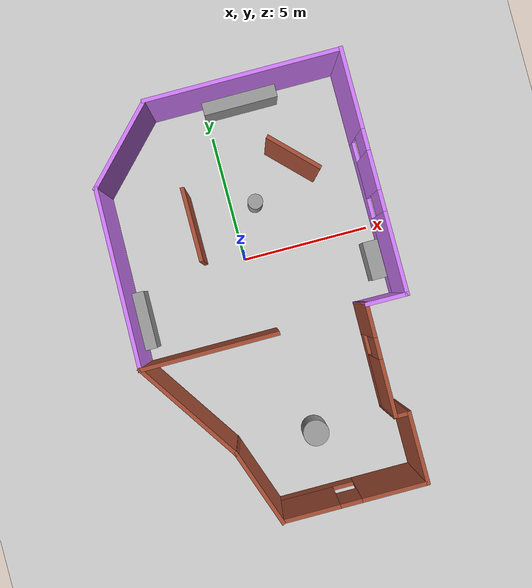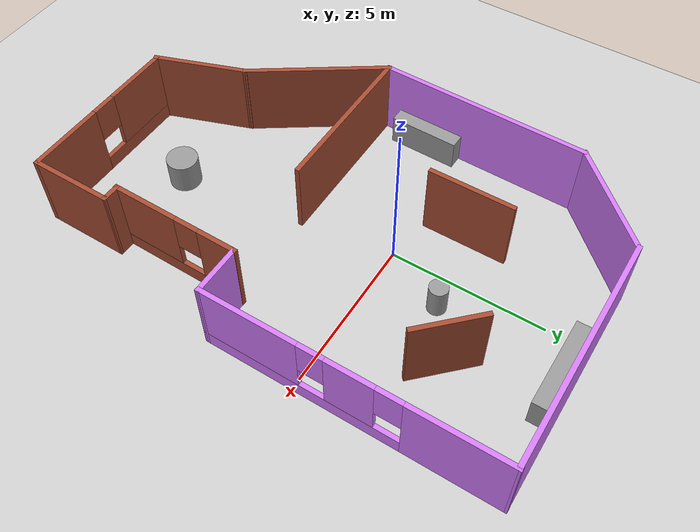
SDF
<sdf version="1.6">
 <world name="default">
  <light name="sun" type="directional">
   <pose>0 0 10 0 -0 0</pose>
   <diffuse>0.8 0.8 0.8 1</diffuse>
   <specular>0.2 0.2 0.2 1</specular>
   <attenuation>
    <range>1000</range>
    <constant>0.9</constant>
    <linear>0.01</linear>
    <quadratic>0.001</quadratic>
   </attenuation>
   <direction>-0.5 0.1 -0.9</direction>
  </light>
  <model name="ground_plane">
   <static>1</static>
   <link name="link">
    <collision name="collision">
     <geometry><plane><normal>0 0 1</normal><size>100 100</size></plane></geometry>
     <surface><friction><ode><mu>100</mu><mu2>50</mu2></ode></friction></surface>
    </collision>
    <visual name="visual">
     <cast_shadows>0</cast_shadows>
     <geometry><plane><normal>0 0 1</normal><size>100 100</size></plane></geometry>
     <material>
      <script><uri>file://media/materials/scripts/gazebo.material</uri><name>Gazebo/Grey</name></script>
     </material>
    </visual>
   </link>
  </model>
  <gravity>0 0 -9.8</gravity>
  <magnetic_field>6e-06 2.3e-05 -4.2e-05</magnetic_field>
  <atmosphere type="adiabatic"/>
  <physics name="default_physics" default="0" type="ode">
   <max_step_size>0.001</max_step_size>
   <real_time_factor>1</real_time_factor>
   <real_time_update_rate>1000</real_time_update_rate>
  </physics>
  <scene><ambient>0.4 0.4 0.4 1</ambient><background>0.7 0.7 0.7 1</background><shadows>1</shadows></scene>
  <spherical_coordinates>
   <surface_model>EARTH_WGS84</surface_model>
   <latitude_deg>0</latitude_deg>
   <longitude_deg>0</longitude_deg>
   <elevation>0</elevation>
   <heading_deg>0</heading_deg>
  </spherical_coordinates>
  <model name="RobotHouse2">
   <pose>0.30543 -1.62231 0 0 -0 0</pose>
   <link name="Wall_10">
    <collision name="Wall_10_Collision">
     <geometry><box><size>4.7035 0.15 2.5</size></box></geometry>
     <pose>0 0 1.25 0 -0 0</pose>
    </collision>
    <visual name="Wall_10_Visual">
     <pose>0 0 1.25 0 -0 0</pose>
     <geometry><box><size>4.7035 0.15 2.5</size></box></geometry>
     <material>
      <script><uri>file://media/materials/scripts/gazebo.material</uri><name>Gazebo/Bricks</name></script>
      <ambient>0.831373 0.486275 1 1</ambient>
     </material>
     <meta><layer>0</layer></meta>
    </visual>
    <pose>-3.67881 -3.24961 0 0 0 -0.975414</pose>
   </link>
   <link name="Wall_12">
    <collision name="Wall_12_Collision">
     <geometry><box><size>3.11255 0.15 2.5</size></box></geometry>
     <pose>0 0 1.25 0 -0 0</pose>
    </collision>
    <visual name="Wall_12_Visual">
     <pose>0 0 1.25 0 -0 0</pose>
     <geometry><box><size>3.11255 0.15 2.5</size></box></geometry>
     <material>
      <script><uri>file://media/materials/scripts/gazebo.material</uri><name>Gazebo/Bricks</name></script>
      <ambient>1 1 1 1</ambient>
     </material>
     <meta><layer>0</layer></meta>
    </visual>
    <pose>-1.90381 -6.52961 0 0 0 -1.22782</pose>
   </link>
   <link name="Wall_14">
    <pose>4.97933 3.38039 0 0 0 -1.5697</pose>
    <visual name="Wall_14_Visual_0">
     <pose>-3.10248 0 1.25 0 -0 0</pose>
     <geometry><box><size>3.07505 0.15 2.5</size></box></geometry>
     <material>
      <script><uri>file://media/materials/scripts/gazebo.material</uri><name>Gazebo/Grey</name></script>
      <ambient>0.831373 0.486275 1 1</ambient>
     </material>
     <meta><layer>0</layer></meta>
    </visual>
    <collision name="Wall_14_Collision_0">
     <geometry><box><size>3.07505 0.15 2.5</size></box></geometry>
     <pose>-3.10248 0 1.25 0 -0 0</pose>
    </collision>
    <visual name="Wall_14_Visual_1">
     <pose>1.53753 0 0.25 0 -0 0</pose>
     <geometry><box><size>6.20495 0.15 0.5</size></box></geometry>
     <material>
      <script><uri>file://media/materials/scripts/gazebo.material</uri><name>Gazebo/Grey</name></script>
      <ambient>0.831373 0.486275 1 1</ambient>
     </material>
     <meta><layer>0</layer></meta>
    </visual>
    <collision name="Wall_14_Collision_1">
     <geometry><box><size>6.20495 0.15 0.5</size></box></geometry>
     <pose>1.53753 0 0.25 0 -0 0</pose>
    </collision>
    <visual name="Wall_14_Visual_2">
     <pose>-0.027405 0 1.5 0 -0 0</pose>
     <geometry><box><size>1.47509 0.15 2</size></box></geometry>
     <material>
      <script><uri>file://media/materials/scripts/gazebo.material</uri><name>Gazebo/Grey</name></script>
      <ambient>0.831373 0.486275 1 1</ambient>
     </material>
     <meta><layer>0</layer></meta>
    </visual>
    <collision name="Wall_14_Collision_2">
     <geometry><box><size>1.47509 0.15 2</size></box></geometry>
     <pose>-0.027405 0 1.5 0 -0 0</pose>
    </collision>
    <visual name="Wall_14_Visual_3">
     <pose>3.07507 0 1.5 0 -0 0</pose>
     <geometry><box><size>3.12986 0.15 2</size></box></geometry>
     <material>
      <script><uri>file://media/materials/scripts/gazebo.material</uri><name>Gazebo/Grey</name></script>
      <ambient>0.831373 0.486275 1 1</ambient>
     </material>
     <meta><layer>0</layer></meta>
    </visual>
    <collision name="Wall_14_Collision_3">
     <geometry><box><size>3.12986 0.15 2</size></box></geometry>
     <pose>3.07507 0 1.5 0 -0 0</pose>
    </collision>
    <visual name="Wall_14_Visual_4">
     <pose>-1.16495 0 1.9 0 -0 0</pose>
     <geometry><box><size>0.8 0.15 1.2</size></box></geometry>
     <material>
      <script><uri>file://media/materials/scripts/gazebo.material</uri><name>Gazebo/Grey</name></script>
      <ambient>0.831373 0.486275 1 1</ambient>
     </material>
     <meta><layer>0</layer></meta>
    </visual>
    <collision name="Wall_14_Collision_4">
     <geometry><box><size>0.8 0.15 1.2</size></box></geometry>
     <pose>-1.16495 0 1.9 0 -0 0</pose>
    </collision>
    <visual name="Wall_14_Visual_5">
     <pose>1.11014 0 1.9 0 -0 0</pose>
     <geometry><box><size>0.8 0.15 1.2</size></box></geometry>
     <material>
      <script><uri>file://media/materials/scripts/gazebo.material</uri><name>Gazebo/Grey</name></script>
      <ambient>0.831373 0.486275 1 1</ambient>
     </material>
     <meta><layer>0</layer></meta>
    </visual>
    <collision name="Wall_14_Collision_5">
     <geometry><box><size>0.8 0.15 1.2</size></box></geometry>
     <pose>1.11014 0 1.9 0 -0 0</pose>
    </collision>
   </link>
   <link name="Wall_16">
    <collision name="Wall_16_Collision">
     <geometry><box><size>1.65003 0.15 2.5</size></box></geometry>
     <pose>0 0 1.25 0 -0 0</pose>
    </collision>
    <visual name="Wall_16_Visual">
     <pose>0 0 1.25 0 -0 0</pose>
     <geometry><box><size>1.65003 0.15 2.5</size></box></geometry>
     <material>
      <script><uri>file://media/materials/scripts/gazebo.material</uri><name>Gazebo/Grey</name></script>
      <ambient>0.831373 0.486275 1 1</ambient>
     </material>
     <meta><layer>0</layer></meta>
    </visual>
    <pose>4.23433 -1.18961 0 0 -0 3.13493</pose>
   </link>
   <link name="Wall_17">
    <pose>3.46433 -3.24961 0 0 0 -1.58044</pose>
    <visual name="Wall_17_Visual_0">
     <pose>-1.49506 0 1.25 0 -0 0</pose>
     <geometry><box><size>1.31007 0.15 2.5</size></box></geometry>
     <material>
      <script><uri>file://media/materials/scripts/gazebo.material</uri><name>Gazebo/Bricks</name></script>
      <ambient>0.831373 0.486275 1 1</ambient>
     </material>
     <meta><layer>0</layer></meta>
    </visual>
    <collision name="Wall_17_Collision_0">
     <geometry><box><size>1.31007 0.15 2.5</size></box></geometry>
     <pose>-1.49506 0 1.25 0 -0 0</pose>
    </collision>
    <visual name="Wall_17_Visual_1">
     <pose>0.655036 0 0.25 0 -0 0</pose>
     <geometry><box><size>2.99012 0.15 0.5</size></box></geometry>
     <material>
      <script><uri>file://media/materials/scripts/gazebo.material</uri><name>Gazebo/Bricks</name></script>
      <ambient>0.831373 0.486275 1 1</ambient>
     </material>
     <meta><layer>0</layer></meta>
    </visual>
    <collision name="Wall_17_Collision_1">
     <geometry><box><size>2.99012 0.15 0.5</size></box></geometry>
     <pose>0.655036 0 0.25 0 -0 0</pose>
    </collision>
    <visual name="Wall_17_Visual_2">
     <pose>1.05504 0 1.5 0 -0 0</pose>
     <geometry><box><size>2.19012 0.15 2</size></box></geometry>
     <material>
      <script><uri>file://media/materials/scripts/gazebo.material</uri><name>Gazebo/Bricks</name></script>
      <ambient>0.831373 0.486275 1 1</ambient>
     </material>
     <meta><layer>0</layer></meta>
    </visual>
    <collision name="Wall_17_Collision_2">
     <geometry><box><size>2.19012 0.15 2</size></box></geometry>
     <pose>1.05504 0 1.5 0 -0 0</pose>
    </collision>
    <visual name="Wall_17_Visual_3">
     <pose>-0.440024 0 1.9 0 -0 0</pose>
     <geometry><box><size>0.8 0.15 1.2</size></box></geometry>
     <material>
      <script><uri>file://media/materials/scripts/gazebo.material</uri><name>Gazebo/Bricks</name></script>
      <ambient>0.831373 0.486275 1 1</ambient>
     </material>
     <meta><layer>0</layer></meta>
    </visual>
    <collision name="Wall_17_Collision_3">
     <geometry><box><size>0.8 0.15 1.2</size></box></geometry>
     <pose>-0.440024 0 1.9 0 -0 0</pose>
    </collision>
   </link>
   <link name="Wall_18">
    <collision name="Wall_18_Collision">
     <geometry><box><size>0.65 0.15 2.5</size></box></geometry>
     <pose>0 0 1.25 0 -0 0</pose>
    </collision>
    <visual name="Wall_18_Visual">
     <pose>0 0 1.25 0 -0 0</pose>
     <geometry><box><size>0.65 0.15 2.5</size></box></geometry>
     <material>
      <script><uri>file://media/materials/scripts/gazebo.material</uri><name>Gazebo/Bricks</name></script>
      <ambient>0.760784 0.662745 0.627451 1</ambient>
     </material>
     <meta><layer>0</layer></meta>
    </visual>
    <pose>3.69433 -5.31961 0 0 0 -0.019997</pose>
   </link>
   <link name="Wall_20">
    <collision name="Wall_20_Collision">
     <geometry><box><size>2.71 0.15 2.5</size></box></geometry>
     <pose>0 0 1.25 0 -0 0</pose>
    </collision>
    <visual name="Wall_20_Visual">
     <pose>0 0 1.25 0 -0 0</pose>
     <geometry><box><size>2.71 0.15 2.5</size></box></geometry>
     <material>
      <script><uri>file://media/materials/scripts/gazebo.material</uri><name>Gazebo/Bricks</name></script>
      <ambient>1 1 1 1</ambient>
     </material>
     <meta><layer>0</layer></meta>
    </visual>
    <pose>3.94433 -6.60461 0 0 0 -1.5708</pose>
   </link>
   <link name="Wall_21">
    <pose>1.26933 -7.89461 0 0 -0 3.14159</pose>
    <visual name="Wall_21_Visual_0">
     <pose>-1.5025 0 1.25 0 -0 0</pose>
     <geometry><box><size>2.495 0.15 2.5</size></box></geometry>
     <material>
      <script><uri>file://media/materials/scripts/gazebo.material</uri><name>Gazebo/Bricks</name></script>
      <ambient>1 1 1 1</ambient>
     </material>
     <meta><layer>0</layer></meta>
    </visual>
    <collision name="Wall_21_Collision_0">
     <geometry><box><size>2.495 0.15 2.5</size></box></geometry>
     <pose>-1.5025 0 1.25 0 -0 0</pose>
    </collision>
    <visual name="Wall_21_Visual_1">
     <pose>1.2475 0 0.25 0 -0 0</pose>
     <geometry><box><size>3.005 0.15 0.5</size></box></geometry>
     <material>
      <script><uri>file://media/materials/scripts/gazebo.material</uri><name>Gazebo/Bricks</name></script>
      <ambient>1 1 1 1</ambient>
     </material>
     <meta><layer>0</layer></meta>
    </visual>
    <collision name="Wall_21_Collision_1">
     <geometry><box><size>3.005 0.15 0.5</size></box></geometry>
     <pose>1.2475 0 0.25 0 -0 0</pose>
    </collision>
    <visual name="Wall_21_Visual_2">
     <pose>1.6475 0 1.5 0 -0 0</pose>
     <geometry><box><size>2.205 0.15 2</size></box></geometry>
     <material>
      <script><uri>file://media/materials/scripts/gazebo.material</uri><name>Gazebo/Bricks</name></script>
      <ambient>1 1 1 1</ambient>
     </material>
     <meta><layer>0</layer></meta>
    </visual>
    <collision name="Wall_21_Collision_2">
     <geometry><box><size>2.205 0.15 2</size></box></geometry>
     <pose>1.6475 0 1.5 0 -0 0</pose>
    </collision>
    <visual name="Wall_21_Visual_3">
     <pose>0.145 0 1.9 0 -0 0</pose>
     <geometry><box><size>0.8 0.15 1.2</size></box></geometry>
     <material>
      <script><uri>file://media/materials/scripts/gazebo.material</uri><name>Gazebo/Bricks</name></script>
      <ambient>1 1 1 1</ambient>
     </material>
     <meta><layer>0</layer></meta>
    </visual>
    <collision name="Wall_21_Collision_3">
     <geometry><box><size>0.8 0.15 1.2</size></box></geometry>
     <pose>0.145 0 1.9 0 -0 0</pose>
    </collision>
   </link>
   <link name="Wall_25">
    <collision name="Wall_25_Collision">
     <geometry><box><size>3.70858 0.15 2.5</size></box></geometry>
     <pose>0 0 1.25 0 -0 0</pose>
    </collision>
    <visual name="Wall_25_Visual">
     <pose>0 0 1.25 0 -0 0</pose>
     <geometry><box><size>3.70858 0.15 2.5</size></box></geometry>
     <material>
      <script><uri>file://media/materials/scripts/gazebo.material</uri><name>Gazebo/Grey</name></script>
      <ambient>0.827451 0.482353 1 1</ambient>
     </material>
     <meta><layer>0</layer></meta>
    </visual>
    <pose>-3.61788 6.61318 0 0 -0 0.809245</pose>
   </link>
   <link name="Wall_30">
    <collision name="Wall_30_Collision">
     <geometry><box><size>2.25 0.15 2.5</size></box></geometry>
     <pose>0 0 1.25 0 -0 0</pose>
    </collision>
    <visual name="Wall_30_Visual">
     <pose>0 0 1.25 0 -0 0</pose>
     <geometry><box><size>2.25 0.15 2.5</size></box></geometry>
     <material>
      <script><uri>file://media/materials/scripts/gazebo.material</uri><name>Gazebo/Bricks</name></script>
      <ambient>0.811765 0.482353 1 1</ambient>
     </material>
     <meta><layer>0</layer></meta>
    </visual>
    <pose>2.38035 4.76937 0 0 0 -0.785398</pose>
   </link>
   <link name="Wall_43">
    <collision name="Wall_43_Collision">
     <geometry><box><size>5.25 0.15 2.5</size></box></geometry>
     <pose>0 0 1.25 0 -0 0</pose>
    </collision>
    <visual name="Wall_43_Visual">
     <pose>0 0 1.25 0 -0 0</pose>
     <geometry><box><size>5.25 0.15 2.5</size></box></geometry>
     <material>
      <script><uri>file://media/materials/scripts/gazebo.material</uri><name>Gazebo/Bricks</name></script>
      <ambient>1 1 1 1</ambient>
     </material>
     <meta><layer>0</layer></meta>
    </visual>
    <pose>-2.40567 -1.37461 0 0 -0 0</pose>
   </link>
   <link name="Wall_5">
    <collision name="Wall_5_Collision">
     <geometry><box><size>7.5 0.15 2.5</size></box></geometry>
     <pose>0 0 1.25 0 -0 0</pose>
    </collision>
    <visual name="Wall_5_Visual">
     <pose>0 0 1.25 0 -0 0</pose>
     <geometry><box><size>7.5 0.15 2.5</size></box></geometry>
     <material>
      <script><uri>file://media/materials/scripts/gazebo.material</uri><name>Gazebo/Grey</name></script>
      <ambient>0.831373 0.486275 1 1</ambient>
     </material>
     <meta><layer>0</layer></meta>
    </visual>
    <pose>1.29933 7.93539 0 0 -0 0</pose>
   </link>
   <link name="Wall_50">
    <collision name="Wall_50_Collision">
     <geometry><box><size>2.75 0.15 2.5</size></box></geometry>
     <pose>0 0 1.25 0 -0 0</pose>
    </collision>
    <visual name="Wall_50_Visual">
     <pose>0 0 1.25 0 -0 0</pose>
     <geometry><box><size>2.75 0.15 2.5</size></box></geometry>
     <material>
      <script><uri>file://media/materials/scripts/gazebo.material</uri><name>Gazebo/Bricks</name></script>
      <ambient>1 1 1 1</ambient>
     </material>
     <meta><layer>0</layer></meta>
    </visual>
    <pose>-1.83567 3.19539 0 0 0 -1.5708</pose>
   </link>
   <link name="Wall_8">
    <collision name="Wall_8_Collision">
     <geometry><box><size>6.84108 0.15 2.5</size></box></geometry>
     <pose>0 0 1.25 0 -0 0</pose>
    </collision>
    <visual name="Wall_8_Visual">
     <pose>0 0 1.25 0 -0 0</pose>
     <geometry><box><size>6.84108 0.15 2.5</size></box></geometry>
     <material>
      <script><uri>file://media/materials/scripts/gazebo.material</uri><name>Gazebo/Grey</name></script>
      <ambient>0.831373 0.486275 1 1</ambient>
     </material>
     <meta><layer>0</layer></meta>
    </visual>
    <pose>-4.89567 1.98039 0 0 0 -1.58873</pose>
   </link>
   <static>1</static>
  </model>
  <model name="unit_box">
   <pose>4.84627 -1.32719 0.395323 0 8e-06 0.001103</pose>
   <link name="link">
    <inertial>
     <mass>1</mass>
     <inertia>
      <ixx>0.166667</ixx>
      <ixy>0</ixy>
      <ixz>0</ixz>
      <iyy>0.166667</iyy>
      <iyz>0</iyz>
      <izz>0.166667</izz>
     </inertia>
    </inertial>
    <collision name="collision"><geometry><box><size>0.594184 1.5071 0.790651</size></box></geometry></collision>
    <visual name="visual">
     <geometry><box><size>0.594184 1.5071 0.790651</size></box></geometry>
     <material>
      <script><name>Gazebo/Grey</name><uri>file://media/materials/scripts/gazebo.material</uri></script>
     </material>
    </visual>
   </link>
  </model>
  <model name="unit_cylinder">
   <pose>0.925094 -7.14042 0.499996 0 -0 0</pose>
   <link name="link">
    <inertial>
     <mass>1</mass>
     <inertia><ixx>0.145833</ixx><ixy>0</ixy><ixz>0</ixz><iyy>0.145833</iyy><iyz>0</iyz><izz>0.125</izz></inertia>
    </inertial>
    <collision name="collision">
     <geometry><cylinder><radius>0.49897</radius><length>1</length></cylinder></geometry>
    </collision>
    <visual name="visual">
     <geometry><cylinder><radius>0.49897</radius><length>1</length></cylinder></geometry>
     <material>
      <script><name>Gazebo/Grey</name><uri>file://media/materials/scripts/gazebo.material</uri></script>
     </material>
    </visual>
   </link>
  </model>
  <model name="unit_box_0">
   <pose>-4.31249 -1.31948 0.499968 2.8e-05 -0 -0.016538</pose>
   <link name="link">
    <inertial>
     <mass>1</mass>
     <inertia>
      <ixx>0.166667</ixx>
      <ixy>0</ixy>
      <ixz>0</ixz>
      <iyy>0.166667</iyy>
      <iyz>0</iyz>
      <izz>0.166667</izz>
     </inertia>
    </inertial>
    <collision name="collision"><geometry><box><size>0.462445 2.24101 1</size></box></geometry></collision>
    <visual name="visual">
     <geometry><box><size>0.462445 2.24101 1</size></box></geometry>
     <material>
      <script><name>Gazebo/Grey</name><uri>file://media/materials/scripts/gazebo.material</uri></script>
     </material>
    </visual>
   </link>
  </model>
  <model name="unit_box_1">
   <pose>1.37103 5.94037 0.499854 0 -0.0001 0.000319</pose>
   <link name="link">
    <inertial>
     <mass>1</mass>
     <inertia>
      <ixx>0.166667</ixx>
      <ixy>0</ixy>
      <ixz>0</ixz>
      <iyy>0.166667</iyy>
      <iyz>0</iyz>
      <izz>0.166667</izz>
     </inertia>
    </inertial>
    <collision name="collision"><geometry><box><size>2.89807 0.493279 1</size></box></geometry></collision>
    <visual name="visual">
     <geometry><box><size>2.89807 0.493279 1</size></box></geometry>
     <material>
      <script><name>Gazebo/Grey</name><uri>file://media/materials/scripts/gazebo.material</uri></script>
     </material>
    </visual>
   </link>
  </model>
  <model name="unit_cylinder_0">
   <pose>0.95576 2.00551 0.499993 -1e-06 2e-06 -0</pose>
   <link name="link">
    <inertial>
     <mass>1</mass>
     <inertia><ixx>0.145833</ixx><ixy>0</ixy><ixz>0</ixz><iyy>0.145833</iyy><iyz>0</iyz><izz>0.125</izz></inertia>
    </inertial>
    <collision name="collision">
     <geometry><cylinder><radius>0.295873</radius><length>1</length></cylinder></geometry>
    </collision>
    <visual name="visual">
     <geometry><cylinder><radius>0.295873</radius><length>1</length></cylinder></geometry>
     <material>
      <script><name>Gazebo/Grey</name><uri>file://media/materials/scripts/gazebo.material</uri></script>
     </material>
    </visual>
   </link>
  </model>
 </world>
</sdf>
